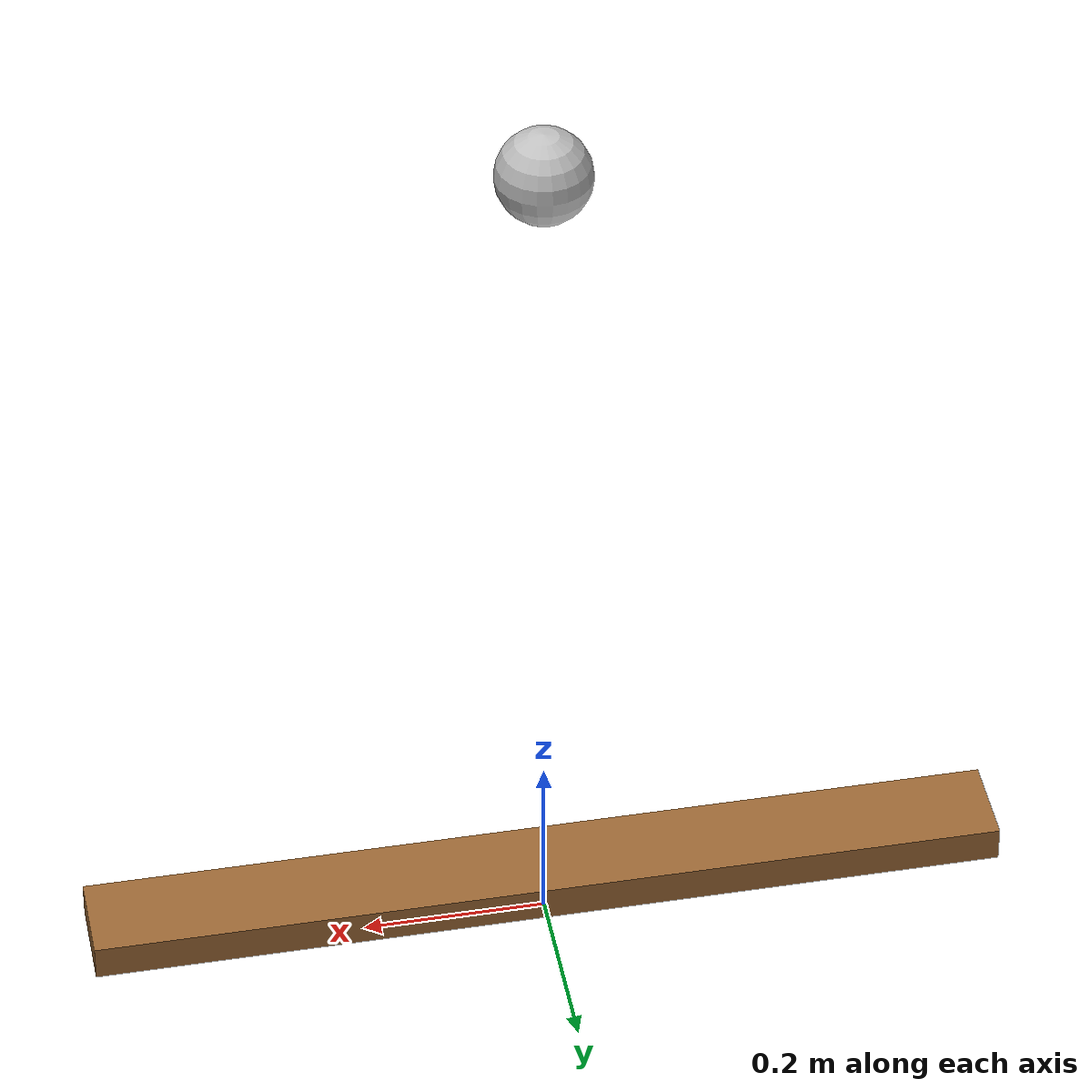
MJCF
<mujoco model="seesaw_with_cubes">
  <option integrator="RK4" density="1.225" viscosity="1.8e-5"/>

  <compiler inertiafromgeom="true" meshdir="assets" autolimits="true"/>

  <worldbody>
    <!-- Ground plane -->

    <!-- See-saw base (pivot point) -->
    <body name="seesaw_base" pos="0.25 0 0.05">
      <freejoint />
      <geom type="box" size="0.05 0.05 0.01" rgba="0.2 0.2 0.2 1"/>
    </body>

    <!-- See-saw plank -->
    <body name="seesaw_plank" pos="0 0 0.05">
      <freejoint />
      <inertial pos="0 0 0" mass="0.1" diaginertia="1e-4 1e-4 1e-4"/>
      <geom type="box" size="0.5 0.05 0.02" rgba="0.6 0.4 0.2 1" friction="3 0.01 0.05"/>
    </body>

    <!-- Left Ball -->
    <body name="left_ball" pos="0 0 1"> <!-- Adjusted initial position -->
      <freejoint />
      <inertial pos="0 0 0" mass="0.05" diaginertia="1e-5 1e-5 1e-5"/>
      <geom type="sphere" size="0.05" rgba="0.75 0.75 0.75 1" friction="2 0.01 0.5"/>
    </body>
  </worldbody>

  <!-- Actuator to control the hinge joint -->
</mujoco>
